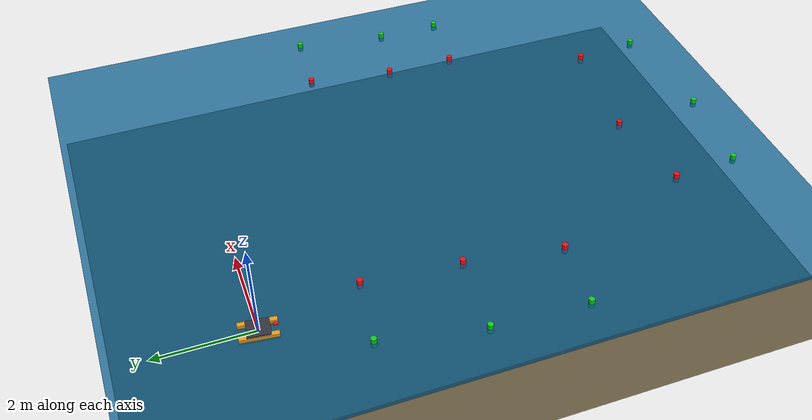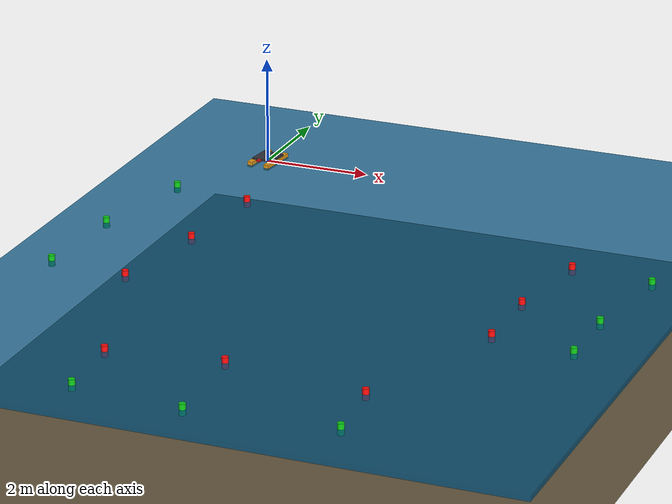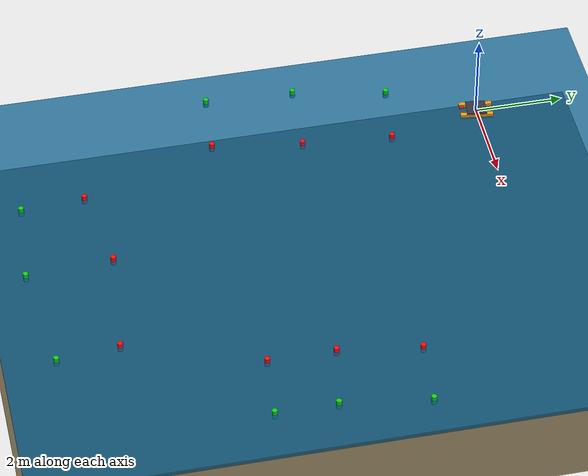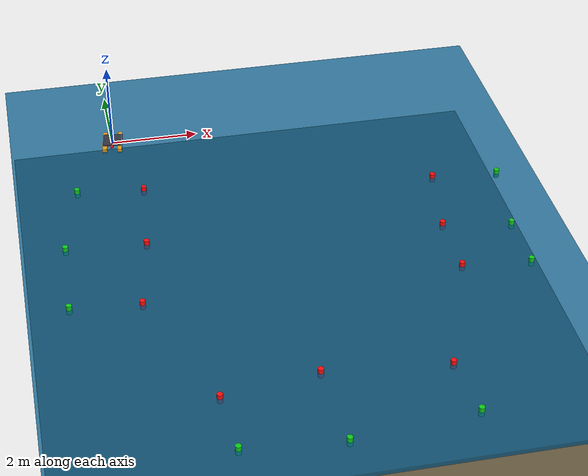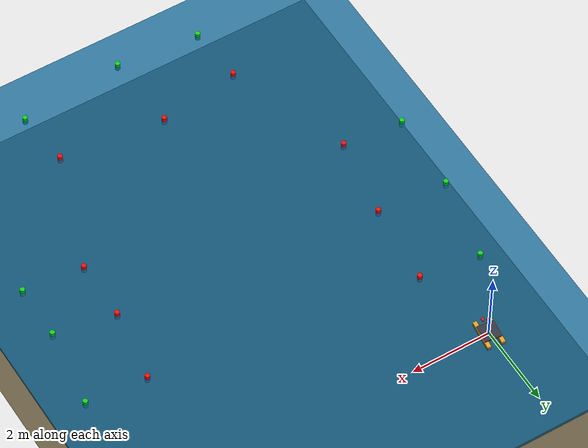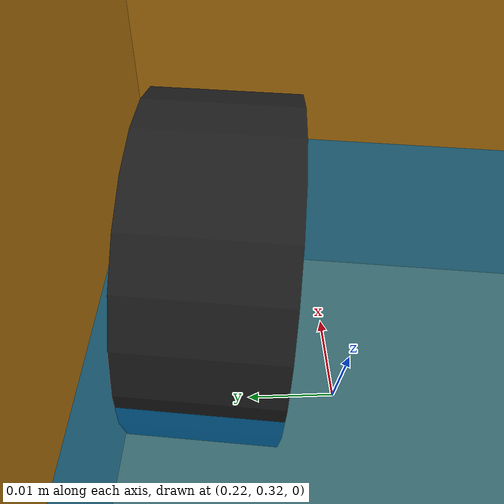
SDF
<sdf version='1.9'>
  <world name='asv_course'>
    <physics name='fast' type='ode'>
      <max_step_size>0.002</max_step_size>
      <real_time_factor>1</real_time_factor>
      <real_time_update_rate>1000</real_time_update_rate>
    </physics>
    <plugin name='ignition::gazebo::systems::Physics' filename='ignition-gazebo-physics-system'/>
    <plugin name='ignition::gazebo::systems::UserCommands' filename='ignition-gazebo-user-commands-system'/>
    <plugin name='ignition::gazebo::systems::SceneBroadcaster' filename='ignition-gazebo-scene-broadcaster-system'/>
    <spherical_coordinates>
      <surface_model>EARTH_WGS84</surface_model>
      <world_frame_orientation>ENU</world_frame_orientation>
      <latitude_deg>-6.9729652800000004</latitude_deg>
      <longitude_deg>107.63037887999999</longitude_deg>
      <elevation>0</elevation>
      <heading_deg>0</heading_deg>
    </spherical_coordinates>
    <gravity>0 0 -9.8</gravity>
    <magnetic_field>6e-06 2.3e-05 -4.2e-05</magnetic_field>
    <atmosphere type='adiabatic'/>
    <scene>
      <ambient>0.4 0.4 0.4 1</ambient>
      <background>0.7 0.7 0.7 1</background>
      <shadows>true</shadows>
    </scene>
    <model name='water_surface'>
      <static>true</static>
      <pose>3.5 -6 -0.05 0 -0 0</pose>
      <link name='l'>
        <visual name='v'>
          <geometry>
            <box>
              <size>60 60 0.1</size>
            </box>
          </geometry>
          <material>
            <ambient>0 0.3 0.5 0.85</ambient>
            <diffuse>0 0.35 0.55 0.85</diffuse>
          </material>
          <transparency>0.25</transparency>
        </visual>
        <pose>0 0 0 0 -0 0</pose>
        <inertial>
          <pose>0 0 0 0 -0 0</pose>
          <mass>1</mass>
          <inertia>
            <ixx>1</ixx>
            <ixy>0</ixy>
            <ixz>0</ixz>
            <iyy>1</iyy>
            <iyz>0</iyz>
            <izz>1</izz>
          </inertia>
        </inertial>
        <enable_wind>false</enable_wind>
      </link>
      <self_collide>false</self_collide>
    </model>
    <model name='seabed'>
      <static>true</static>
      <pose>3.5 -6 -2 0 -0 0</pose>
      <link name='l'>
        <collision name='c'>
          <geometry>
            <plane>
              <normal>0 0 1</normal>
              <size>60 60</size>
            </plane>
          </geometry>
          <surface>
            <friction>
              <ode/>
            </friction>
            <bounce/>
            <contact/>
          </surface>
        </collision>
        <visual name='v'>
          <geometry>
            <plane>
              <normal>0 0 1</normal>
              <size>60 60</size>
            </plane>
          </geometry>
          <material>
            <ambient>0.4 0.35 0.25 1</ambient>
            <diffuse>0.4 0.35 0.25 1</diffuse>
          </material>
        </visual>
        <pose>0 0 0 0 -0 0</pose>
        <inertial>
          <pose>0 0 0 0 -0 0</pose>
          <mass>1</mass>
          <inertia>
            <ixx>1</ixx>
            <ixy>0</ixy>
            <ixz>0</ixz>
            <iyy>1</iyy>
            <iyz>0</iyz>
            <izz>1</izz>
          </inertia>
        </inertial>
        <enable_wind>false</enable_wind>
      </link>
      <self_collide>false</self_collide>
    </model>
    <model name='buoy_wp1_kiri'>
      <static>true</static>
      <pose>0.491 -2.078 0 0 -0 0</pose>
      <link name='l'>
        <visual name='v'>
          <geometry>
            <cylinder>
              <radius>0.059999999999999998</radius>
              <length>0.20000000000000001</length>
            </cylinder>
          </geometry>
          <material>
            <ambient>1 0.05 0.05 1</ambient>
            <diffuse>1 0.05 0.05 1</diffuse>
          </material>
        </visual>
        <pose>0 0 0 0 -0 0</pose>
        <inertial>
          <pose>0 0 0 0 -0 0</pose>
          <mass>1</mass>
          <inertia>
            <ixx>1</ixx>
            <ixy>0</ixy>
            <ixz>0</ixz>
            <iyy>1</iyy>
            <iyz>0</iyz>
            <izz>1</izz>
          </inertia>
        </inertial>
        <enable_wind>false</enable_wind>
      </link>
      <self_collide>false</self_collide>
    </model>
    <model name='buoy_wp1_kanan'>
      <static>true</static>
      <pose>-0.997 -1.889 0 0 -0 0</pose>
      <link name='l'>
        <visual name='v'>
          <geometry>
            <cylinder>
              <radius>0.059999999999999998</radius>
              <length>0.20000000000000001</length>
            </cylinder>
          </geometry>
          <material>
            <ambient>0.05 0.8 0.1 1</ambient>
            <diffuse>0.05 0.8 0.1 1</diffuse>
          </material>
        </visual>
        <pose>0 0 0 0 -0 0</pose>
        <inertial>
          <pose>0 0 0 0 -0 0</pose>
          <mass>1</mass>
          <inertia>
            <ixx>1</ixx>
            <ixy>0</ixy>
            <ixz>0</ixz>
            <iyy>1</iyy>
            <iyz>0</iyz>
            <izz>1</izz>
          </inertia>
        </inertial>
        <enable_wind>false</enable_wind>
      </link>
      <self_collide>false</self_collide>
    </model>
    <model name='buoy_wp2_kiri'>
      <static>true</static>
      <pose>-0.025 -6.127 0 0 -0 0</pose>
      <link name='l'>
        <visual name='v'>
          <geometry>
            <cylinder>
              <radius>0.059999999999999998</radius>
              <length>0.20000000000000001</length>
            </cylinder>
          </geometry>
          <material>
            <ambient>1 0.05 0.05 1</ambient>
            <diffuse>1 0.05 0.05 1</diffuse>
          </material>
        </visual>
        <pose>0 0 0 0 -0 0</pose>
        <inertial>
          <pose>0 0 0 0 -0 0</pose>
          <mass>1</mass>
          <inertia>
            <ixx>1</ixx>
            <ixy>0</ixy>
            <ixz>0</ixz>
            <iyy>1</iyy>
            <iyz>0</iyz>
            <izz>1</izz>
          </inertia>
        </inertial>
        <enable_wind>false</enable_wind>
      </link>
      <self_collide>false</self_collide>
    </model>
    <model name='buoy_wp2_kanan'>
      <static>true</static>
      <pose>-1.518 -5.987 0 0 -0 0</pose>
      <link name='l'>
        <visual name='v'>
          <geometry>
            <cylinder>
              <radius>0.059999999999999998</radius>
              <length>0.20000000000000001</length>
            </cylinder>
          </geometry>
          <material>
            <ambient>0.05 0.8 0.1 1</ambient>
            <diffuse>0.05 0.8 0.1 1</diffuse>
          </material>
        </visual>
        <pose>0 0 0 0 -0 0</pose>
        <inertial>
          <pose>0 0 0 0 -0 0</pose>
          <mass>1</mass>
          <inertia>
            <ixx>1</ixx>
            <ixy>0</ixy>
            <ixz>0</ixz>
            <iyy>1</iyy>
            <iyz>0</iyz>
            <izz>1</izz>
          </inertia>
        </inertial>
        <enable_wind>false</enable_wind>
      </link>
      <self_collide>false</self_collide>
    </model>
    <model name='buoy_wp4_kiri'>
      <static>true</static>
      <pose>1.07677 -9.205 0 0 -0 0</pose>
      <link name='l'>
        <visual name='v'>
          <geometry>
            <cylinder>
              <radius>0.059999999999999998</radius>
              <length>0.20000000000000001</length>
            </cylinder>
          </geometry>
          <material>
            <ambient>1 0.05 0.05 1</ambient>
            <diffuse>1 0.05 0.05 1</diffuse>
          </material>
        </visual>
        <pose>0 0 0 0 -0 0</pose>
        <inertial>
          <pose>0 0 0 0 -0 0</pose>
          <mass>1</mass>
          <inertia>
            <ixx>1</ixx>
            <ixy>0</ixy>
            <ixz>0</ixz>
            <iyy>1</iyy>
            <iyz>0</iyz>
            <izz>1</izz>
          </inertia>
        </inertial>
        <enable_wind>false</enable_wind>
      </link>
      <self_collide>false</self_collide>
    </model>
    <model name='buoy_wp4_kanan'>
      <static>true</static>
      <pose>1.185 -10.634 0 0 -0 0</pose>
      <link name='l'>
        <visual name='v'>
          <geometry>
            <cylinder>
              <radius>0.059999999999999998</radius>
              <length>0.20000000000000001</length>
            </cylinder>
          </geometry>
          <material>
            <ambient>0.05 0.8 0.1 1</ambient>
            <diffuse>0.05 0.8 0.1 1</diffuse>
          </material>
        </visual>
        <pose>0 0 0 0 -0 0</pose>
        <inertial>
          <pose>0 0 0 0 -0 0</pose>
          <mass>1</mass>
          <inertia>
            <ixx>1</ixx>
            <ixy>0</ixy>
            <ixz>0</ixz>
            <iyy>1</iyy>
            <iyz>0</iyz>
            <izz>1</izz>
          </inertia>
        </inertial>
        <enable_wind>false</enable_wind>
      </link>
      <self_collide>false</self_collide>
    </model>
    <model name='buoy_wp6_kiri'>
      <static>true</static>
      <pose>5.70481 -9.168 0 0 -0 0</pose>
      <link name='l'>
        <visual name='v'>
          <geometry>
            <cylinder>
              <radius>0.059999999999999998</radius>
              <length>0.20000000000000001</length>
            </cylinder>
          </geometry>
          <material>
            <ambient>1 0.05 0.05 1</ambient>
            <diffuse>1 0.05 0.05 1</diffuse>
          </material>
        </visual>
        <pose>0 0 0 0 -0 0</pose>
        <inertial>
          <pose>0 0 0 0 -0 0</pose>
          <mass>1</mass>
          <inertia>
            <ixx>1</ixx>
            <ixy>0</ixy>
            <ixz>0</ixz>
            <iyy>1</iyy>
            <iyz>0</iyz>
            <izz>1</izz>
          </inertia>
        </inertial>
        <enable_wind>false</enable_wind>
      </link>
      <self_collide>false</self_collide>
    </model>
    <model name='buoy_wp6_kanan'>
      <static>true</static>
      <pose>5.845 -10.551 0 0 -0 0</pose>
      <link name='l'>
        <visual name='v'>
          <geometry>
            <cylinder>
              <radius>0.059999999999999998</radius>
              <length>0.20000000000000001</length>
            </cylinder>
          </geometry>
          <material>
            <ambient>0.05 0.8 0.1 1</ambient>
            <diffuse>0.05 0.8 0.1 1</diffuse>
          </material>
        </visual>
        <pose>0 0 0 0 -0 0</pose>
        <inertial>
          <pose>0 0 0 0 -0 0</pose>
          <mass>1</mass>
          <inertia>
            <ixx>1</ixx>
            <ixy>0</ixy>
            <ixz>0</ixz>
            <iyy>1</iyy>
            <iyz>0</iyz>
            <izz>1</izz>
          </inertia>
        </inertial>
        <enable_wind>false</enable_wind>
      </link>
      <self_collide>false</self_collide>
    </model>
    <model name='buoy_wp8_kiri'>
      <static>true</static>
      <pose>6.764 -4.72024 0 0 -0 0</pose>
      <link name='l'>
        <visual name='v'>
          <geometry>
            <cylinder>
              <radius>0.059999999999999998</radius>
              <length>0.20000000000000001</length>
            </cylinder>
          </geometry>
          <material>
            <ambient>1 0.05 0.05 1</ambient>
            <diffuse>1 0.05 0.05 1</diffuse>
          </material>
        </visual>
        <pose>0 0 0 0 -0 0</pose>
        <inertial>
          <pose>0 0 0 0 -0 0</pose>
          <mass>1</mass>
          <inertia>
            <ixx>1</ixx>
            <ixy>0</ixy>
            <ixz>0</ixz>
            <iyy>1</iyy>
            <iyz>0</iyz>
            <izz>1</izz>
          </inertia>
        </inertial>
        <enable_wind>false</enable_wind>
      </link>
      <self_collide>false</self_collide>
    </model>
    <model name='buoy_wp8_kanan'>
      <static>true</static>
      <pose>8.257 -4.99284 0 0 -0 0</pose>
      <link name='l'>
        <visual name='v'>
          <geometry>
            <cylinder>
              <radius>0.059999999999999998</radius>
              <length>0.20000000000000001</length>
            </cylinder>
          </geometry>
          <material>
            <ambient>0.05 0.8 0.1 1</ambient>
            <diffuse>0.05 0.8 0.1 1</diffuse>
          </material>
        </visual>
        <pose>0 0 0 0 -0 0</pose>
        <inertial>
          <pose>0 0 0 0 -0 0</pose>
          <mass>1</mass>
          <inertia>
            <ixx>1</ixx>
            <ixy>0</ixy>
            <ixz>0</ixz>
            <iyy>1</iyy>
            <iyz>0</iyz>
            <izz>1</izz>
          </inertia>
        </inertial>
        <enable_wind>false</enable_wind>
      </link>
      <self_collide>false</self_collide>
    </model>
    <model name='buoy_wp9_kiri'>
      <static>true</static>
      <pose>7.043 -2.907 0 0 -0 0</pose>
      <link name='l'>
        <visual name='v'>
          <geometry>
            <cylinder>
              <radius>0.059999999999999998</radius>
              <length>0.20000000000000001</length>
            </cylinder>
          </geometry>
          <material>
            <ambient>1 0.05 0.05 1</ambient>
            <diffuse>1 0.05 0.05 1</diffuse>
          </material>
        </visual>
        <pose>0 0 0 0 -0 0</pose>
        <inertial>
          <pose>0 0 0 0 -0 0</pose>
          <mass>1</mass>
          <inertia>
            <ixx>1</ixx>
            <ixy>0</ixy>
            <ixz>0</ixz>
            <iyy>1</iyy>
            <iyz>0</iyz>
            <izz>1</izz>
          </inertia>
        </inertial>
        <enable_wind>false</enable_wind>
      </link>
      <self_collide>false</self_collide>
    </model>
    <model name='buoy_wp9_kanan'>
      <static>true</static>
      <pose>8.537 -3.033 0 0 -0 0</pose>
      <link name='l'>
        <visual name='v'>
          <geometry>
            <cylinder>
              <radius>0.059999999999999998</radius>
              <length>0.20000000000000001</length>
            </cylinder>
          </geometry>
          <material>
            <ambient>0.05 0.8 0.1 1</ambient>
            <diffuse>0.05 0.8 0.1 1</diffuse>
          </material>
        </visual>
        <pose>0 0 0 0 -0 0</pose>
        <inertial>
          <pose>0 0 0 0 -0 0</pose>
          <mass>1</mass>
          <inertia>
            <ixx>1</ixx>
            <ixy>0</ixy>
            <ixz>0</ixz>
            <iyy>1</iyy>
            <iyz>0</iyz>
            <izz>1</izz>
          </inertia>
        </inertial>
        <enable_wind>false</enable_wind>
      </link>
      <self_collide>false</self_collide>
    </model>
    <include>
      <uri>file:///home/salamut/asv_upci/gazebo_sim/models/asv_boat</uri>
      <name>asv_boat</name>
      <pose>8e-06 6.8e-05 0.066423 0 -0.00081 -1.69297</pose>
    </include>
    <model name='buoy_wp1_kanan_1'>
      <static>true</static>
      <pose>-1.43009 -3.98549 0 0 -0 0</pose>
      <link name='l'>
        <visual name='v'>
          <geometry>
            <cylinder>
              <radius>0.059999999999999998</radius>
              <length>0.20000000000000001</length>
            </cylinder>
          </geometry>
          <material>
            <ambient>0.05 0.8 0.1 1</ambient>
            <diffuse>0.05 0.8 0.1 1</diffuse>
          </material>
        </visual>
      </link>
      <self_collide>false</self_collide>
    </model>
    <model name='buoy_wp1_kiri_1'>
      <static>true</static>
      <pose>0.307603 -4.10736 0 0 -0 0</pose>
      <link name='l'>
        <visual name='v'>
          <geometry>
            <cylinder>
              <radius>0.059999999999999998</radius>
              <length>0.20000000000000001</length>
            </cylinder>
          </geometry>
          <material>
            <ambient>1 0.05 0.05 1</ambient>
            <diffuse>1 0.05 0.05 1</diffuse>
          </material>
        </visual>
      </link>
      <self_collide>false</self_collide>
    </model>
    <model name='buoy_wp4_kiri_1'>
      <static>true</static>
      <pose>3.10979 -8.88981 0 0 -0 0</pose>
      <link name='l'>
        <visual name='v'>
          <geometry>
            <cylinder>
              <radius>0.059999999999999998</radius>
              <length>0.20000000000000001</length>
            </cylinder>
          </geometry>
          <material>
            <ambient>1 0.05 0.05 1</ambient>
            <diffuse>1 0.05 0.05 1</diffuse>
          </material>
        </visual>
      </link>
      <self_collide>false</self_collide>
    </model>
    <model name='buoy_wp4_kanan_1'>
      <static>true</static>
      <pose>3.23433 -10.8239 0 0 -0 0</pose>
      <link name='l'>
        <visual name='v'>
          <geometry>
            <cylinder>
              <radius>0.059999999999999998</radius>
              <length>0.20000000000000001</length>
            </cylinder>
          </geometry>
          <material>
            <ambient>0.05 0.8 0.1 1</ambient>
            <diffuse>0.05 0.8 0.1 1</diffuse>
          </material>
        </visual>
      </link>
      <self_collide>false</self_collide>
    </model>
    <model name='buoy_wp8_kiri_1'>
      <static>true</static>
      <pose>6.764 -6.211 0 0 -0 0</pose>
      <link name='l'>
        <visual name='v'>
          <geometry>
            <cylinder>
              <radius>0.059999999999999998</radius>
              <length>0.20000000000000001</length>
            </cylinder>
          </geometry>
          <material>
            <ambient>1 0.05 0.05 1</ambient>
            <diffuse>1 0.05 0.05 1</diffuse>
          </material>
        </visual>
      </link>
      <self_collide>false</self_collide>
    </model>
    <model name='buoy_wp8_kanan_1'>
      <static>true</static>
      <pose>8.257 -6.352 0 0 -0 0</pose>
      <link name='l'>
        <visual name='v'>
          <geometry>
            <cylinder>
              <radius>0.059999999999999998</radius>
              <length>0.20000000000000001</length>
            </cylinder>
          </geometry>
          <material>
            <ambient>0.05 0.8 0.1 1</ambient>
            <diffuse>0.05 0.8 0.1 1</diffuse>
          </material>
        </visual>
      </link>
      <self_collide>false</self_collide>
    </model>
    <light name='sun' type='directional'>
      <pose>0 0 20 0 -0 0</pose>
      <cast_shadows>false</cast_shadows>
      <intensity>1</intensity>
      <direction>-0.3 0.2 -0.9</direction>
      <diffuse>0.9 0.9 0.9 1</diffuse>
      <specular>0.2 0.2 0.2 1</specular>
      <attenuation>
        <range>10</range>
        <linear>1</linear>
        <constant>1</constant>
        <quadratic>0</quadratic>
      </attenuation>
      <spot>
        <inner_angle>0</inner_angle>
        <outer_angle>0</outer_angle>
        <falloff>0</falloff>
      </spot>
    </light>
  </world>
</sdf>

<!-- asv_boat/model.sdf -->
<sdf version="1.9">
  <model name="asv_boat">
    <link name="base_link">
      <inertial>
        <mass>5.0</mass>
        <pose>0 0 -0.08 0 0 0</pose>
        <inertia>
          <ixx>0.17</ixx><iyy>0.25</iyy><izz>0.30</izz>
          <ixy>0</ixy><ixz>0</ixz><iyz>0</iyz>
        </inertia>
      </inertial>

      <!-- lambung kiri (port, y+) -->
      <collision name="hull_port">
        <pose>0 0.175 -0.05 0 0 0</pose>
        <geometry><box><size>0.75 0.10 0.10</size></box></geometry>
      </collision>
      <visual name="hull_port_v">
        <pose>0 0.175 -0.05 0 0 0</pose>
        <geometry><box><size>0.75 0.10 0.10</size></box></geometry>
        <material><ambient>0.9 0.6 0.1 1</ambient><diffuse>0.9 0.6 0.1 1</diffuse></material>
      </visual>

      <!-- lambung kanan (starboard, y-) -->
      <collision name="hull_stbd">
        <pose>0 -0.175 -0.05 0 0 0</pose>
        <geometry><box><size>0.75 0.10 0.10</size></box></geometry>
      </collision>
      <visual name="hull_stbd_v">
        <pose>0 -0.175 -0.05 0 0 0</pose>
        <geometry><box><size>0.75 0.10 0.10</size></box></geometry>
        <material><ambient>0.9 0.6 0.1 1</ambient><diffuse>0.9 0.6 0.1 1</diffuse></material>
      </visual>

      <!-- dek penghubung (visual saja, massa sudah di inertial) -->
      <visual name="deck_v">
        <pose>0 0 0.015 0 0 0</pose>
        <geometry><box><size>0.45 0.42 0.03</size></box></geometry>
        <material><ambient>0.2 0.2 0.25 1</ambient><diffuse>0.2 0.2 0.25 1</diffuse></material>
      </visual>
      <!-- penanda haluan agar arah terlihat -->
      <visual name="bow_v">
        <pose>0.33 0 0.045 0 0 0</pose>
        <geometry><box><size>0.09 0.06 0.03</size></box></geometry>
        <material><ambient>0.9 0.1 0.1 1</ambient><diffuse>0.9 0.1 0.1 1</diffuse></material>
      </visual>
    </link>

    <!-- propeler kiri: silinder kecil di buritan lambung kiri, sumbu x (maju) -->
    <link name="left_prop">
      <pose>-0.36 0.20 -0.07 0 1.5707963 0</pose>
      <inertial>
        <mass>0.02</mass>
        <inertia><ixx>1e-5</ixx><iyy>1e-5</iyy><izz>1e-5</izz>
                 <ixy>0</ixy><ixz>0</ixz><iyz>0</iyz></inertia>
      </inertial>
      <visual name="v">
        <geometry><cylinder><radius>0.025</radius><length>0.02</length></cylinder></geometry>
        <material><ambient>0.1 0.1 0.1 1</ambient><diffuse>0.1 0.1 0.1 1</diffuse></material>
      </visual>
    </link>
    <joint name="left_prop_joint" type="revolute">
      <parent>base_link</parent>
      <child>left_prop</child>
      <axis>
        <xyz>1 0 0</xyz>
        <limit><lower>-1e16</lower><upper>1e16</upper></limit>
      </axis>
      <pose>0 0 0 0 -1.5707963 0</pose>
    </joint>

    <!-- propeler kanan -->
    <link name="right_prop">
      <pose>-0.36 -0.20 -0.07 0 1.5707963 0</pose>
      <inertial>
        <mass>0.02</mass>
        <inertia><ixx>1e-5</ixx><iyy>1e-5</iyy><izz>1e-5</izz>
                 <ixy>0</ixy><ixz>0</ixz><iyz>0</iyz></inertia>
      </inertial>
      <visual name="v">
        <geometry><cylinder><radius>0.025</radius><length>0.02</length></cylinder></geometry>
        <material><ambient>0.1 0.1 0.1 1</ambient><diffuse>0.1 0.1 0.1 1</diffuse></material>
      </visual>
    </link>
    <joint name="right_prop_joint" type="revolute">
      <parent>base_link</parent>
      <child>right_prop</child>
      <axis>
        <xyz>1 0 0</xyz>
        <limit><lower>-1e16</lower><upper>1e16</upper></limit>
      </axis>
      <pose>0 0 0 0 -1.5707963 0</pose>
    </joint>

    <!-- Thruster bawaan Gazebo: gaya sepanjang sumbu joint pada link propeler.
         Topic: /model/asv_boat/joint/{left,right}_prop_joint/cmd_thrust (N). -->
    <plugin filename="ignition-gazebo-thruster-system"
            name="ignition::gazebo::systems::Thruster">
      <namespace>asv_boat</namespace>
      <joint_name>left_prop_joint</joint_name>
      <fluid_density>1000</fluid_density>
      <propeller_diameter>0.05</propeller_diameter>
      <thrust_coefficient>0.02</thrust_coefficient>
      <velocity_control>true</velocity_control>
    </plugin>
    <plugin filename="ignition-gazebo-thruster-system"
            name="ignition::gazebo::systems::Thruster">
      <namespace>asv_boat</namespace>
      <joint_name>right_prop_joint</joint_name>
      <fluid_density>1000</fluid_density>
      <propeller_diameter>0.05</propeller_diameter>
      <thrust_coefficient>0.02</thrust_coefficient>
      <velocity_control>true</velocity_control>
    </plugin>

    <plugin filename="ignition-gazebo-hydrodynamics-system"
            name="ignition::gazebo::systems::Hydrodynamics">
      <link_name>base_link</link_name>
      <water_density>1000</water_density>
      <xDotU>0</xDotU>
      <yDotV>0</yDotV>
      <zDotW>0</zDotW>
      <kDotP>0</kDotP>
      <mDotQ>0</mDotQ>
      <nDotR>0</nDotR>
      <xUabsU>-6.0</xUabsU>
      <yVabsV>-60.0</yVabsV>
      <zWabsW>-50.0</zWabsW>
      <kPabsP>-5.0</kPabsP>
      <mQabsQ>-8.0</mQabsQ>
      <nRabsR>-0.55</nRabsR>
    </plugin>

    <!-- Jembatan ArduPilot SITL (JSON) — lihat plugin/AsvJsonBridge.cc -->
    <plugin filename="AsvJsonBridge" name="asv::AsvJsonBridge">
      <link_name>base_link</link_name>
      <port>9002</port>
      <servo_left_index>0</servo_left_index>   <!-- SERVO1 = ThrottleLeft  -->
      <servo_right_index>2</servo_right_index> <!-- SERVO3 = ThrottleRight -->
      <max_thrust>7.0</max_thrust>             <!-- N per motor pada PWM penuh -->
      <pwm_trim>1500</pwm_trim>
      <pwm_range>400</pwm_range>
      <pwm_deadband>20</pwm_deadband>
      <left_joint>left_prop_joint</left_joint>
      <right_joint>right_prop_joint</right_joint>
      <!-- arus air konstan (N, kerangka dunia ENU; x=Timur, y=Utara) -->
      <current_force_x>0.0</current_force_x>
      <current_force_y>0.0</current_force_y>
      <!-- hidrostatika 8 titik (dimensi harus cocok dengan geometri lambung) -->
      <hydrostatics>true</hydrostatics>
      <hull_length>0.75</hull_length>
      <hull_width>0.10</hull_width>
      <hull_height>0.10</hull_height>
      <hull_offset_y>0.175</hull_offset_y>
      <hull_top_z>0.0</hull_top_z>
      <water_level>0.0</water_level>
      <heave_damping_per_point>15.0</heave_damping_per_point>
    </plugin>
  </model>
</sdf>
